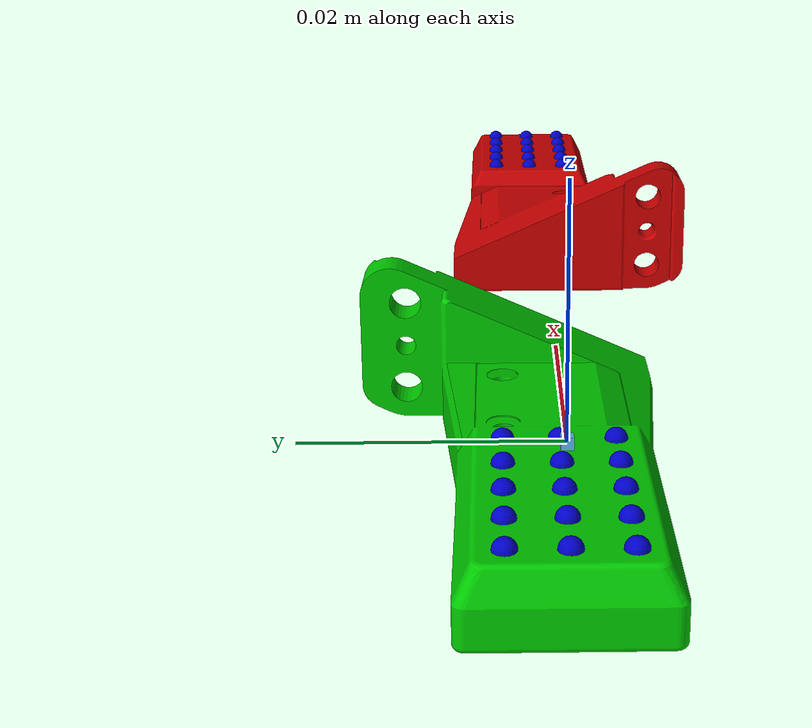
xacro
<?xml version="1.0"?>
<robot xmlns:xacro="http://www.ros.org/wiki/xacro" name="uSPrHE35_2modules">
  <xacro:arg name="use_ros2_control" default="false" />
  <xacro:property name="use_ros2_control" value="$(arg use_ros2_control)" />

  <xacro:include filename="$(find xela_models)/urdf/materials.xacro" />
  <xacro:include filename="$(find xela_models)/urdf/taxel_n.xacro" />

  <xacro:include filename="$(find xela_models)/urdf/uSPrHE35.xacro" />

	<link name="world" />

	<joint name="fixed" type="fixed">
		<parent link="world" />
		<child link="x_taxel_viz" />
	</joint>

	<link name="x_taxel_viz">
		<visual>
			<origin xyz="0.0 0.0 0.0" rpy="0 0 0"/>
      <geometry>
        <box size="0.001 0.001 0.001"/>
      </geometry>
		</visual>
	</link>

  <xacro:uSPrHE35  	sequence="'01'" col="green" parent="x_taxel_viz" taxels="1" x="0" y="0" rz="180" />
  <xacro:uSPrHE35  	sequence="'02'" col="red" parent="x_taxel_viz" taxels="1" x="0.125" y="0" />

  <xacro:if value="${use_ros2_control}">
    <ros2_control name="xela_taxel_fake_system" type="system">
      <hardware>
        <plugin>fake_components/GenericSystem</plugin>
      </hardware>
      <joint name="x_taxel_01_uSPrHE35_01_joint">
        <command_interface name="position"/>
        <state_interface name="position"/>
      </joint>
      <joint name="x_taxel_01_uSPrHE35_02_joint">
        <command_interface name="position"/>
        <state_interface name="position"/>
      </joint>
      <joint name="x_taxel_01_uSPrHE35_03_joint">
        <command_interface name="position"/>
        <state_interface name="position"/>
      </joint>
      <joint name="x_taxel_01_uSPrHE35_04_joint">
        <command_interface name="position"/>
        <state_interface name="position"/>
      </joint>
      <joint name="x_taxel_01_uSPrHE35_05_joint">
        <command_interface name="position"/>
        <state_interface name="position"/>
      </joint>
      <joint name="x_taxel_01_uSPrHE35_06_joint">
        <command_interface name="position"/>
        <state_interface name="position"/>
      </joint>
      <joint name="x_taxel_01_uSPrHE35_07_joint">
        <command_interface name="position"/>
        <state_interface name="position"/>
      </joint>
      <joint name="x_taxel_01_uSPrHE35_08_joint">
        <command_interface name="position"/>
        <state_interface name="position"/>
      </joint>
      <joint name="x_taxel_01_uSPrHE35_09_joint">
        <command_interface name="position"/>
        <state_interface name="position"/>
      </joint>
      <joint name="x_taxel_01_uSPrHE35_10_joint">
        <command_interface name="position"/>
        <state_interface name="position"/>
      </joint>
      <joint name="x_taxel_01_uSPrHE35_11_joint">
        <command_interface name="position"/>
        <state_interface name="position"/>
      </joint>
      <joint name="x_taxel_01_uSPrHE35_12_joint">
        <command_interface name="position"/>
        <state_interface name="position"/>
      </joint>
      <joint name="x_taxel_01_uSPrHE35_13_joint">
        <command_interface name="position"/>
        <state_interface name="position"/>
      </joint>
      <joint name="x_taxel_01_uSPrHE35_14_joint">
        <command_interface name="position"/>
        <state_interface name="position"/>
      </joint>
      <joint name="x_taxel_01_uSPrHE35_15_joint">
        <command_interface name="position"/>
        <state_interface name="position"/>
      </joint>
      <joint name="x_taxel_02_uSPrHE35_01_joint">
        <command_interface name="position"/>
        <state_interface name="position"/>
      </joint>
      <joint name="x_taxel_02_uSPrHE35_02_joint">
        <command_interface name="position"/>
        <state_interface name="position"/>
      </joint>
      <joint name="x_taxel_02_uSPrHE35_03_joint">
        <command_interface name="position"/>
        <state_interface name="position"/>
      </joint>
      <joint name="x_taxel_02_uSPrHE35_04_joint">
        <command_interface name="position"/>
        <state_interface name="position"/>
      </joint>
      <joint name="x_taxel_02_uSPrHE35_05_joint">
        <command_interface name="position"/>
        <state_interface name="position"/>
      </joint>
      <joint name="x_taxel_02_uSPrHE35_06_joint">
        <command_interface name="position"/>
        <state_interface name="position"/>
      </joint>
      <joint name="x_taxel_02_uSPrHE35_07_joint">
        <command_interface name="position"/>
        <state_interface name="position"/>
      </joint>
      <joint name="x_taxel_02_uSPrHE35_08_joint">
        <command_interface name="position"/>
        <state_interface name="position"/>
      </joint>
      <joint name="x_taxel_02_uSPrHE35_09_joint">
        <command_interface name="position"/>
        <state_interface name="position"/>
      </joint>
      <joint name="x_taxel_02_uSPrHE35_10_joint">
        <command_interface name="position"/>
        <state_interface name="position"/>
      </joint>
      <joint name="x_taxel_02_uSPrHE35_11_joint">
        <command_interface name="position"/>
        <state_interface name="position"/>
      </joint>
      <joint name="x_taxel_02_uSPrHE35_12_joint">
        <command_interface name="position"/>
        <state_interface name="position"/>
      </joint>
      <joint name="x_taxel_02_uSPrHE35_13_joint">
        <command_interface name="position"/>
        <state_interface name="position"/>
      </joint>
      <joint name="x_taxel_02_uSPrHE35_14_joint">
        <command_interface name="position"/>
        <state_interface name="position"/>
      </joint>
      <joint name="x_taxel_02_uSPrHE35_15_joint">
        <command_interface name="position"/>
        <state_interface name="position"/>
      </joint>
    </ros2_control>
  </xacro:if>
</robot>

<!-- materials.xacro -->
<robot xmlns:xacro="http://www.ros.org/wiki/xacro" name="materials">

  <!-- Rviz colors -->
  <material name="black">
    <color rgba="0.1 0.1 0.1 1.0"/>
  </material>

  <material name="blue">
    <color rgba="0.0 0.0 0.8 1.0"/>
  </material>

  <material name="green">
    <color rgba="0.0 0.8 0.0 1.0"/>
  </material>

  <material name="grey">
    <color rgba="0.2 0.2 0.2 1.0"/>
  </material>

  <material name="orange">
    <color rgba="${255/255} ${108/255} ${10/255} 1.0"/>
  </material>

  <material name="brown">
    <color rgba="${222/255} ${207/255} ${195/255} 1.0"/>
  </material>

  <material name="red">
    <color rgba="0.8 0.0 0.0 1.0"/>
  </material>

  <material name="white">
    <color rgba="1.0 1.0 1.0 1.0"/>
  </material>
</robot>

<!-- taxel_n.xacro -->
<robot xmlns:xacro="http://www.ros.org/wiki/xacro" name="xela_taxel">

  <xacro:macro name="taxel_n" params="sequence parent x:=0.0 y:=0.0 z:=0.0 rx:=0.0 ry:=0.0 rz:=0.0 col:='blue' zmod:=0.0 sensor_collision:=0 sensor_inertial:=0">

    <joint name="${sequence}_joint" type="prismatic">
      <origin xyz="${x} ${y} ${z}" rpy="${radians(rx)} ${radians(ry)} ${radians(rz)}"/>
      <parent link="${parent}"/>
      <child link="${sequence}_link"/>
      <axis xyz="0 0 1"/>
      <limit effort="100.0" lower="${-0.001-zmod}" upper="0.000" velocity="0.5"/>
    </joint>

    <link name="${sequence}_link">
      <visual>
        <geometry>
          <sphere radius="0.001"/>
        </geometry>
        <origin xyz="0.0 0.0 0.0" rpy="0 0 0"/>
        <material name="${col}"/>
      </visual>
      <xacro:if value="${sensor_collision}">
        <collision>
          <origin xyz="0.0 0.0 0.0" rpy="0 0 0"/>
          <geometry>
            <sphere radius="0.001"/>
          </geometry>
        </collision>
      </xacro:if>
      <xacro:if value="${sensor_inertial}">
        <inertial>
          <mass value="0.0001" />
          <origin xyz="0.0 0.0 0.0" rpy="0 0 0"/>
          <inertia ixx="0.0000006666667" ixy="0.0" ixz="0.0" iyy="0.0000006666667" iyz="0.0" izz="0.0000006666667"/>
        </inertial>
      </xacro:if>

    </link>

    <gazebo reference="${sequence}_link">
        <material>Gazebo/Blue</material>
    </gazebo>

  </xacro:macro>

  <xacro:macro name="taxelntest" params="sequence parent x:=0.0 y:=0.0 z:=0.0 rx:=0.0 ry:=0.0 rz:=0.0">
    <xacro:taxel_n sequence="${sequence}A"  x="${x}" y="${y}" z="${z}" rx="${rx}" ry="${ry}" rz="${rz}" parent="${parent}" />
    <xacro:taxel_n sequence="${sequence}B"  x="${x}" y="${y}" z="${z}" rx="${rx}" ry="${ry}" rz="${rz}" parent="${parent}" col="red" zmod="-0.001" />
  </xacro:macro>

</robot>

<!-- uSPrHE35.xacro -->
<robot name="uSPrHE35" xmlns:xacro="http://www.ros.org/wiki/xacro">

  <xacro:arg name="sensor_prefix" default="x_taxel_" />
  <xacro:arg name="base_prefix" default="x_base_" />

  <!-- uSPr HE35 model -->
  <xacro:macro name="uSPrHE35" params="sequence parent x:=0.0 y:=0.0 z:=0.0 rx:=0.0 ry:=0.0 rz:=0.0 col:='blue' body:=1 taxels:=1 skipinertia:=0 xoff=-0.019 yoff=0.0095 zoff=-0.0062 txstep=0.0048 tystep=0.0048 standalone:=0">
    <xacro:if value="${standalone == 1}">
      <xacro:include filename="$(find xela_models)/urdf/materials.xacro" />
      <xacro:include filename="$(find xela_models)/urdf/taxel_n.xacro" />
    </xacro:if>

   <xacro:property name="initial_positions_file" default="$(arg initial_positions_file)"/>

    <joint name="$(arg base_prefix)${sequence}_uSPrHE35_fixed" type="fixed">
      <origin xyz="${x} ${y} ${z}" rpy="${radians(rx)} ${radians(ry)} ${radians(rz)}"/>
      <parent link="${parent}" />
      <child link="$(arg base_prefix)${sequence}_uSPrHE35_link" />
    </joint>
    <link name="$(arg base_prefix)${sequence}_uSPrHE35_link">
      <collision>
        <origin xyz="0 0 0" rpy="0 0 -1.57" />
        <geometry>
          <mesh filename="package://xela_models/mesh/uSPrHE35.stl" scale="0.001 0.001 0.001"/>
        </geometry>
      </collision>
      <xacro:if value="${body == 1}">
        <visual>
          <origin xyz="0 0 0" rpy="0 0 -1.57" />
          <geometry>
            <mesh filename="package://xela_models/mesh/uSPrHE35.stl" scale="0.001 0.001 0.001"/>
          </geometry>
          <material name="${col}"/>
        </visual>
        <xacro:unless value="${skipinertia == 1}">
          <inertial>
            <origin xyz="0.001258 -0.020107 -0.010350" rpy="0 0 0"/>
            <mass value="0.020553"/>
            <inertia ixx="5.819471e-06" ixy="5.367372e-07" ixz="-8.146625e-08"
                    iyy="8.883230e-07" iyz="-3.681331e-08" izz="6.455063e-06"/>
          </inertial>
        </xacro:unless>
      </xacro:if>
    </link>

    <gazebo reference="$(arg base_prefix)${sequence}_uSPrHE35_link">
      <material>Gazebo/Red</material>
    </gazebo>

    <xacro:if value="${taxels == 1}">
      <xacro:taxel_n sequence="$(arg sensor_prefix)${sequence}_uSPa35_01" x="${1*txstep+xoff}" y="${3*tystep-yoff}" z="${zoff}" parent="$(arg base_prefix)${sequence}_uSPrHE35_link" />
      <xacro:taxel_n sequence="$(arg sensor_prefix)${sequence}_uSPa35_02" x="${2*txstep+xoff}" y="${3*tystep-yoff}" z="${zoff}" parent="$(arg base_prefix)${sequence}_uSPrHE35_link" />
      <xacro:taxel_n sequence="$(arg sensor_prefix)${sequence}_uSPa35_03" x="${3*txstep+xoff}" y="${3*tystep-yoff}" z="${zoff}" parent="$(arg base_prefix)${sequence}_uSPrHE35_link" />
      <xacro:taxel_n sequence="$(arg sensor_prefix)${sequence}_uSPa35_04" x="${4*txstep+xoff}" y="${3*tystep-yoff}" z="${zoff}" parent="$(arg base_prefix)${sequence}_uSPrHE35_link" />
      <xacro:taxel_n sequence="$(arg sensor_prefix)${sequence}_uSPa35_05" x="${5*txstep+xoff}" y="${3*tystep-yoff}" z="${zoff}" parent="$(arg base_prefix)${sequence}_uSPrHE35_link" />
      <xacro:taxel_n sequence="$(arg sensor_prefix)${sequence}_uSPa35_06" x="${1*txstep+xoff}" y="${2*tystep-yoff}" z="${zoff}" parent="$(arg base_prefix)${sequence}_uSPrHE35_link" />
      <xacro:taxel_n sequence="$(arg sensor_prefix)${sequence}_uSPa35_07" x="${2*txstep+xoff}" y="${2*tystep-yoff}" z="${zoff}" parent="$(arg base_prefix)${sequence}_uSPrHE35_link" />
      <xacro:taxel_n sequence="$(arg sensor_prefix)${sequence}_uSPa35_08" x="${3*txstep+xoff}" y="${2*tystep-yoff}" z="${zoff}" parent="$(arg base_prefix)${sequence}_uSPrHE35_link" />
      <xacro:taxel_n sequence="$(arg sensor_prefix)${sequence}_uSPa35_09" x="${4*txstep+xoff}" y="${2*tystep-yoff}" z="${zoff}" parent="$(arg base_prefix)${sequence}_uSPrHE35_link" />
      <xacro:taxel_n sequence="$(arg sensor_prefix)${sequence}_uSPa35_10" x="${5*txstep+xoff}" y="${2*tystep-yoff}" z="${zoff}" parent="$(arg base_prefix)${sequence}_uSPrHE35_link" />
      <xacro:taxel_n sequence="$(arg sensor_prefix)${sequence}_uSPa35_11" x="${1*txstep+xoff}" y="${1*tystep-yoff}" z="${zoff}" parent="$(arg base_prefix)${sequence}_uSPrHE35_link" />
      <xacro:taxel_n sequence="$(arg sensor_prefix)${sequence}_uSPa35_12" x="${2*txstep+xoff}" y="${1*tystep-yoff}" z="${zoff}" parent="$(arg base_prefix)${sequence}_uSPrHE35_link" />
      <xacro:taxel_n sequence="$(arg sensor_prefix)${sequence}_uSPa35_13" x="${3*txstep+xoff}" y="${1*tystep-yoff}" z="${zoff}" parent="$(arg base_prefix)${sequence}_uSPrHE35_link" />
      <xacro:taxel_n sequence="$(arg sensor_prefix)${sequence}_uSPa35_14" x="${4*txstep+xoff}" y="${1*tystep-yoff}" z="${zoff}" parent="$(arg base_prefix)${sequence}_uSPrHE35_link" />
      <xacro:taxel_n sequence="$(arg sensor_prefix)${sequence}_uSPa35_15" x="${5*txstep+xoff}" y="${1*tystep-yoff}" z="${zoff}" parent="$(arg base_prefix)${sequence}_uSPrHE35_link" />
    </xacro:if>
  </xacro:macro>

</robot>
